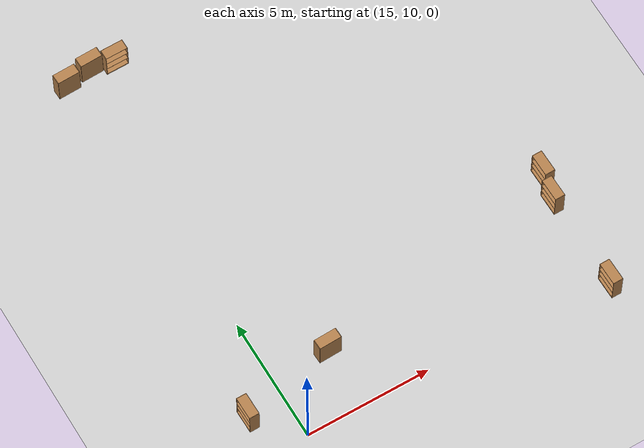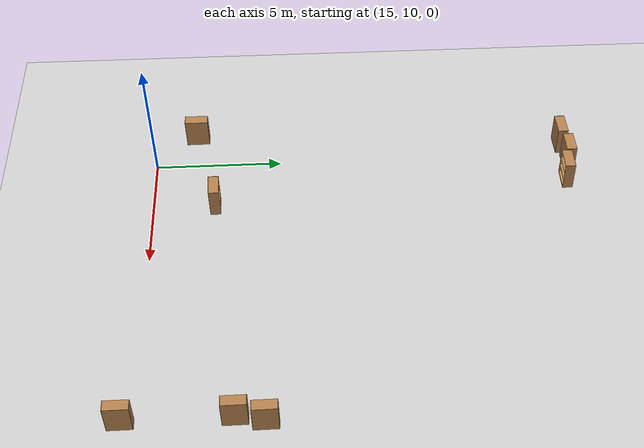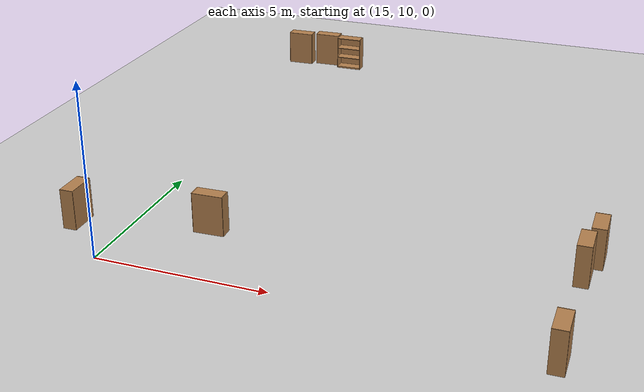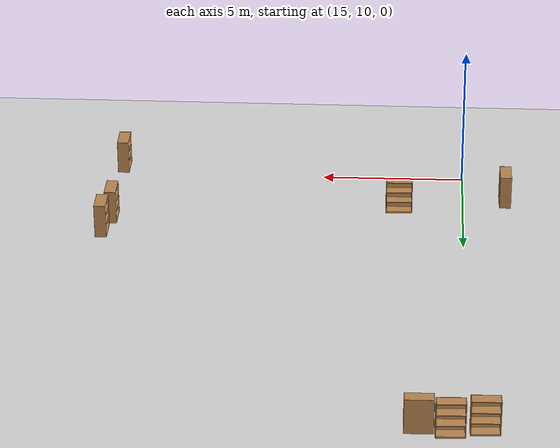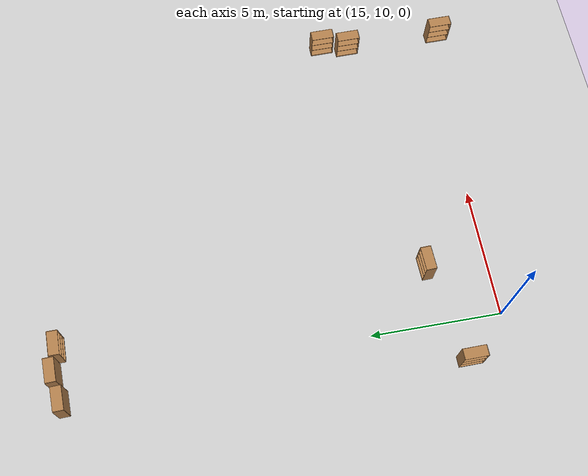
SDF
<sdf version="1.6">
 <world name="default">
  <model name="ground_plane">
   <static>1</static>
   <link name="link">
    <collision name="collision">
     <geometry><plane><normal>0 0 1</normal><size>100 100</size></plane></geometry>
     <surface>
      <contact><collide_bitmask>65535</collide_bitmask></contact>
      <friction><ode><mu>100</mu><mu2>50</mu2></ode></friction>
     </surface>
    </collision>
    <visual name="visual">
     <cast_shadows>0</cast_shadows>
     <geometry><plane><normal>0 0 1</normal><size>100 100</size></plane></geometry>
     <material>
      <script><uri>file://media/materials/scripts/gazebo.material</uri><name>Gazebo/Grey</name></script>
     </material>
    </visual>
   </link>
  </model>
  <model name="bookshelf_clone_2_clone_clone_0_clone_3_clone_clone_1_clone">
   <static>1</static>
   <link name="link">
    <inertial><mass>1</mass></inertial>
    <collision name="back">
     <pose>0 0.005 0.6 0 -0 0</pose>
     <geometry><box><size>0.9 0.01 1.2</size></box></geometry>
    </collision>
    <visual name="visual1">
     <pose>0 0.005 0.6 0 -0 0</pose>
     <geometry><box><size>0.9 0.01 1.2</size></box></geometry>
     <material>
      <script><uri>file://media/materials/scripts/gazebo.material</uri><name>Gazebo/Wood</name></script>
     </material>
    </visual>
    <collision name="left_side">
     <pose>0.45 -0.195 0.6 0 -0 0</pose>
     <geometry><box><size>0.02 0.4 1.2</size></box></geometry>
    </collision>
    <visual name="visual2">
     <pose>0.45 -0.195 0.6 0 -0 0</pose>
     <geometry><box><size>0.02 0.4 1.2</size></box></geometry>
     <material>
      <script><uri>file://media/materials/scripts/gazebo.material</uri><name>Gazebo/Wood</name></script>
     </material>
    </visual>
    <collision name="right_side">
     <pose>-0.45 -0.195 0.6 0 -0 0</pose>
     <geometry><box><size>0.02 0.4 1.2</size></box></geometry>
    </collision>
    <visual name="visual3">
     <pose>-0.45 -0.195 0.6 0 -0 0</pose>
     <geometry><box><size>0.02 0.4 1.2</size></box></geometry>
     <material>
      <script><uri>file://media/materials/scripts/gazebo.material</uri><name>Gazebo/Wood</name></script>
     </material>
    </visual>
    <collision name="bottom">
     <pose>0 -0.195 0.03 0 -0 0</pose>
     <geometry><box><size>0.88 0.4 0.06</size></box></geometry>
    </collision>
    <visual name="visual4">
     <pose>0 -0.195 0.03 0 -0 0</pose>
     <geometry><box><size>0.88 0.4 0.06</size></box></geometry>
     <material>
      <script><uri>file://media/materials/scripts/gazebo.material</uri><name>Gazebo/Wood</name></script>
     </material>
    </visual>
    <collision name="top">
     <pose>0 -0.195 1.19 0 -0 0</pose>
     <geometry><box><size>0.88 0.4 0.02</size></box></geometry>
    </collision>
    <visual name="visual5">
     <pose>0 -0.195 1.19 0 -0 0</pose>
     <geometry><box><size>0.88 0.4 0.02</size></box></geometry>
     <material>
      <script><uri>file://media/materials/scripts/gazebo.material</uri><name>Gazebo/Wood</name></script>
     </material>
    </visual>
    <collision name="low_shelf">
     <pose>0 -0.195 0.43 0 -0 0</pose>
     <geometry><box><size>0.88 0.4 0.02</size></box></geometry>
    </collision>
    <visual name="visual6">
     <pose>0 -0.195 0.43 0 -0 0</pose>
     <geometry><box><size>0.88 0.4 0.02</size></box></geometry>
     <material>
      <script><uri>file://media/materials/scripts/gazebo.material</uri><name>Gazebo/Wood</name></script>
     </material>
    </visual>
    <collision name="high_shelf">
     <pose>0 -0.195 0.8 0 -0 0</pose>
     <geometry><box><size>0.88 0.4 0.02</size></box></geometry>
    </collision>
    <visual name="visual7">
     <pose>0 -0.195 0.8 0 -0 0</pose>
     <geometry><box><size>0.88 0.4 0.02</size></box></geometry>
     <material>
      <script><uri>file://media/materials/scripts/gazebo.material</uri><name>Gazebo/Wood</name></script>
     </material>
    </visual>
   </link>
   <pose>14.4636 26.255 0 0 0 -3.10717</pose>
  </model>
  <model name="bookshelf_clone_2_clone_clone_0_clone_3_clone_clone_1_clone_0">
   <static>1</static>
   <link name="link">
    <inertial><mass>1</mass></inertial>
    <collision name="back">
     <pose>0 0.005 0.6 0 -0 0</pose>
     <geometry><box><size>0.9 0.01 1.2</size></box></geometry>
    </collision>
    <visual name="visual1">
     <pose>0 0.005 0.6 0 -0 0</pose>
     <geometry><box><size>0.9 0.01 1.2</size></box></geometry>
     <material>
      <script><uri>file://media/materials/scripts/gazebo.material</uri><name>Gazebo/Wood</name></script>
     </material>
    </visual>
    <collision name="left_side">
     <pose>0.45 -0.195 0.6 0 -0 0</pose>
     <geometry><box><size>0.02 0.4 1.2</size></box></geometry>
    </collision>
    <visual name="visual2">
     <pose>0.45 -0.195 0.6 0 -0 0</pose>
     <geometry><box><size>0.02 0.4 1.2</size></box></geometry>
     <material>
      <script><uri>file://media/materials/scripts/gazebo.material</uri><name>Gazebo/Wood</name></script>
     </material>
    </visual>
    <collision name="right_side">
     <pose>-0.45 -0.195 0.6 0 -0 0</pose>
     <geometry><box><size>0.02 0.4 1.2</size></box></geometry>
    </collision>
    <visual name="visual3">
     <pose>-0.45 -0.195 0.6 0 -0 0</pose>
     <geometry><box><size>0.02 0.4 1.2</size></box></geometry>
     <material>
      <script><uri>file://media/materials/scripts/gazebo.material</uri><name>Gazebo/Wood</name></script>
     </material>
    </visual>
    <collision name="bottom">
     <pose>0 -0.195 0.03 0 -0 0</pose>
     <geometry><box><size>0.88 0.4 0.06</size></box></geometry>
    </collision>
    <visual name="visual4">
     <pose>0 -0.195 0.03 0 -0 0</pose>
     <geometry><box><size>0.88 0.4 0.06</size></box></geometry>
     <material>
      <script><uri>file://media/materials/scripts/gazebo.material</uri><name>Gazebo/Wood</name></script>
     </material>
    </visual>
    <collision name="top">
     <pose>0 -0.195 1.19 0 -0 0</pose>
     <geometry><box><size>0.88 0.4 0.02</size></box></geometry>
    </collision>
    <visual name="visual5">
     <pose>0 -0.195 1.19 0 -0 0</pose>
     <geometry><box><size>0.88 0.4 0.02</size></box></geometry>
     <material>
      <script><uri>file://media/materials/scripts/gazebo.material</uri><name>Gazebo/Wood</name></script>
     </material>
    </visual>
    <collision name="low_shelf">
     <pose>0 -0.195 0.43 0 -0 0</pose>
     <geometry><box><size>0.88 0.4 0.02</size></box></geometry>
    </collision>
    <visual name="visual6">
     <pose>0 -0.195 0.43 0 -0 0</pose>
     <geometry><box><size>0.88 0.4 0.02</size></box></geometry>
     <material>
      <script><uri>file://media/materials/scripts/gazebo.material</uri><name>Gazebo/Wood</name></script>
     </material>
    </visual>
    <collision name="high_shelf">
     <pose>0 -0.195 0.8 0 -0 0</pose>
     <geometry><box><size>0.88 0.4 0.02</size></box></geometry>
    </collision>
    <visual name="visual7">
     <pose>0 -0.195 0.8 0 -0 0</pose>
     <geometry><box><size>0.88 0.4 0.02</size></box></geometry>
     <material>
      <script><uri>file://media/materials/scripts/gazebo.material</uri><name>Gazebo/Wood</name></script>
     </material>
    </visual>
   </link>
   <pose>15.5124 26.4389 0 0 0 -3.10717</pose>
  </model>
  <model name="bookshelf_clone_2_clone_clone_0_clone_3_clone_clone_1_clone_0_clone">
   <static>1</static>
   <link name="link">
    <inertial><mass>1</mass></inertial>
    <collision name="back">
     <pose>0 0.005 0.6 0 -0 0</pose>
     <geometry><box><size>0.9 0.01 1.2</size></box></geometry>
    </collision>
    <visual name="visual1">
     <pose>0 0.005 0.6 0 -0 0</pose>
     <geometry><box><size>0.9 0.01 1.2</size></box></geometry>
     <material>
      <script><uri>file://media/materials/scripts/gazebo.material</uri><name>Gazebo/Wood</name></script>
     </material>
    </visual>
    <collision name="left_side">
     <pose>0.45 -0.195 0.6 0 -0 0</pose>
     <geometry><box><size>0.02 0.4 1.2</size></box></geometry>
    </collision>
    <visual name="visual2">
     <pose>0.45 -0.195 0.6 0 -0 0</pose>
     <geometry><box><size>0.02 0.4 1.2</size></box></geometry>
     <material>
      <script><uri>file://media/materials/scripts/gazebo.material</uri><name>Gazebo/Wood</name></script>
     </material>
    </visual>
    <collision name="right_side">
     <pose>-0.45 -0.195 0.6 0 -0 0</pose>
     <geometry><box><size>0.02 0.4 1.2</size></box></geometry>
    </collision>
    <visual name="visual3">
     <pose>-0.45 -0.195 0.6 0 -0 0</pose>
     <geometry><box><size>0.02 0.4 1.2</size></box></geometry>
     <material>
      <script><uri>file://media/materials/scripts/gazebo.material</uri><name>Gazebo/Wood</name></script>
     </material>
    </visual>
    <collision name="bottom">
     <pose>0 -0.195 0.03 0 -0 0</pose>
     <geometry><box><size>0.88 0.4 0.06</size></box></geometry>
    </collision>
    <visual name="visual4">
     <pose>0 -0.195 0.03 0 -0 0</pose>
     <geometry><box><size>0.88 0.4 0.06</size></box></geometry>
     <material>
      <script><uri>file://media/materials/scripts/gazebo.material</uri><name>Gazebo/Wood</name></script>
     </material>
    </visual>
    <collision name="top">
     <pose>0 -0.195 1.19 0 -0 0</pose>
     <geometry><box><size>0.88 0.4 0.02</size></box></geometry>
    </collision>
    <visual name="visual5">
     <pose>0 -0.195 1.19 0 -0 0</pose>
     <geometry><box><size>0.88 0.4 0.02</size></box></geometry>
     <material>
      <script><uri>file://media/materials/scripts/gazebo.material</uri><name>Gazebo/Wood</name></script>
     </material>
    </visual>
    <collision name="low_shelf">
     <pose>0 -0.195 0.43 0 -0 0</pose>
     <geometry><box><size>0.88 0.4 0.02</size></box></geometry>
    </collision>
    <visual name="visual6">
     <pose>0 -0.195 0.43 0 -0 0</pose>
     <geometry><box><size>0.88 0.4 0.02</size></box></geometry>
     <material>
      <script><uri>file://media/materials/scripts/gazebo.material</uri><name>Gazebo/Wood</name></script>
     </material>
    </visual>
    <collision name="high_shelf">
     <pose>0 -0.195 0.8 0 -0 0</pose>
     <geometry><box><size>0.88 0.4 0.02</size></box></geometry>
    </collision>
    <visual name="visual7">
     <pose>0 -0.195 0.8 0 -0 0</pose>
     <geometry><box><size>0.88 0.4 0.02</size></box></geometry>
     <material>
      <script><uri>file://media/materials/scripts/gazebo.material</uri><name>Gazebo/Wood</name></script>
     </material>
    </visual>
   </link>
   <pose>16.4569 26.6259 0 0 -0 0.009659</pose>
  </model>
  <model name="bookshelf_clone_2_clone_clone_0_clone_3_clone_0_clone_1_clone_clone_0_clone_1_clone_1_clone_1_clone">
   <static>1</static>
   <link name="link">
    <inertial><mass>1</mass></inertial>
    <collision name="back">
     <pose>0 0.005 0.6 0 -0 0</pose>
     <geometry><box><size>0.9 0.01 1.2</size></box></geometry>
    </collision>
    <visual name="visual1">
     <pose>0 0.005 0.6 0 -0 0</pose>
     <geometry><box><size>0.9 0.01 1.2</size></box></geometry>
     <material>
      <script><uri>file://media/materials/scripts/gazebo.material</uri><name>Gazebo/Wood</name></script>
     </material>
    </visual>
    <collision name="left_side">
     <pose>0.45 -0.195 0.6 0 -0 0</pose>
     <geometry><box><size>0.02 0.4 1.2</size></box></geometry>
    </collision>
    <visual name="visual2">
     <pose>0.45 -0.195 0.6 0 -0 0</pose>
     <geometry><box><size>0.02 0.4 1.2</size></box></geometry>
     <material>
      <script><uri>file://media/materials/scripts/gazebo.material</uri><name>Gazebo/Wood</name></script>
     </material>
    </visual>
    <collision name="right_side">
     <pose>-0.45 -0.195 0.6 0 -0 0</pose>
     <geometry><box><size>0.02 0.4 1.2</size></box></geometry>
    </collision>
    <visual name="visual3">
     <pose>-0.45 -0.195 0.6 0 -0 0</pose>
     <geometry><box><size>0.02 0.4 1.2</size></box></geometry>
     <material>
      <script><uri>file://media/materials/scripts/gazebo.material</uri><name>Gazebo/Wood</name></script>
     </material>
    </visual>
    <collision name="bottom">
     <pose>0 -0.195 0.03 0 -0 0</pose>
     <geometry><box><size>0.88 0.4 0.06</size></box></geometry>
    </collision>
    <visual name="visual4">
     <pose>0 -0.195 0.03 0 -0 0</pose>
     <geometry><box><size>0.88 0.4 0.06</size></box></geometry>
     <material>
      <script><uri>file://media/materials/scripts/gazebo.material</uri><name>Gazebo/Wood</name></script>
     </material>
    </visual>
    <collision name="top">
     <pose>0 -0.195 1.19 0 -0 0</pose>
     <geometry><box><size>0.88 0.4 0.02</size></box></geometry>
    </collision>
    <visual name="visual5">
     <pose>0 -0.195 1.19 0 -0 0</pose>
     <geometry><box><size>0.88 0.4 0.02</size></box></geometry>
     <material>
      <script><uri>file://media/materials/scripts/gazebo.material</uri><name>Gazebo/Wood</name></script>
     </material>
    </visual>
    <collision name="low_shelf">
     <pose>0 -0.195 0.43 0 -0 0</pose>
     <geometry><box><size>0.88 0.4 0.02</size></box></geometry>
    </collision>
    <visual name="visual6">
     <pose>0 -0.195 0.43 0 -0 0</pose>
     <geometry><box><size>0.88 0.4 0.02</size></box></geometry>
     <material>
      <script><uri>file://media/materials/scripts/gazebo.material</uri><name>Gazebo/Wood</name></script>
     </material>
    </visual>
    <collision name="high_shelf">
     <pose>0 -0.195 0.8 0 -0 0</pose>
     <geometry><box><size>0.88 0.4 0.02</size></box></geometry>
    </collision>
    <visual name="visual7">
     <pose>0 -0.195 0.8 0 -0 0</pose>
     <geometry><box><size>0.88 0.4 0.02</size></box></geometry>
     <material>
      <script><uri>file://media/materials/scripts/gazebo.material</uri><name>Gazebo/Wood</name></script>
     </material>
    </visual>
   </link>
   <pose>27.5016 13.4022 0 0 0 -1.56003</pose>
  </model>
  <model name="bookshelf_clone_2_clone_clone_0_clone_3_clone_0_clone_1_clone_clone_0_clone_1_clone_1_clone_1_clone_0">
   <static>1</static>
   <link name="link">
    <inertial><mass>1</mass></inertial>
    <collision name="back">
     <pose>0 0.005 0.6 0 -0 0</pose>
     <geometry><box><size>0.9 0.01 1.2</size></box></geometry>
    </collision>
    <visual name="visual1">
     <pose>0 0.005 0.6 0 -0 0</pose>
     <geometry><box><size>0.9 0.01 1.2</size></box></geometry>
     <material>
      <script><uri>file://media/materials/scripts/gazebo.material</uri><name>Gazebo/Wood</name></script>
     </material>
    </visual>
    <collision name="left_side">
     <pose>0.45 -0.195 0.6 0 -0 0</pose>
     <geometry><box><size>0.02 0.4 1.2</size></box></geometry>
    </collision>
    <visual name="visual2">
     <pose>0.45 -0.195 0.6 0 -0 0</pose>
     <geometry><box><size>0.02 0.4 1.2</size></box></geometry>
     <material>
      <script><uri>file://media/materials/scripts/gazebo.material</uri><name>Gazebo/Wood</name></script>
     </material>
    </visual>
    <collision name="right_side">
     <pose>-0.45 -0.195 0.6 0 -0 0</pose>
     <geometry><box><size>0.02 0.4 1.2</size></box></geometry>
    </collision>
    <visual name="visual3">
     <pose>-0.45 -0.195 0.6 0 -0 0</pose>
     <geometry><box><size>0.02 0.4 1.2</size></box></geometry>
     <material>
      <script><uri>file://media/materials/scripts/gazebo.material</uri><name>Gazebo/Wood</name></script>
     </material>
    </visual>
    <collision name="bottom">
     <pose>0 -0.195 0.03 0 -0 0</pose>
     <geometry><box><size>0.88 0.4 0.06</size></box></geometry>
    </collision>
    <visual name="visual4">
     <pose>0 -0.195 0.03 0 -0 0</pose>
     <geometry><box><size>0.88 0.4 0.06</size></box></geometry>
     <material>
      <script><uri>file://media/materials/scripts/gazebo.material</uri><name>Gazebo/Wood</name></script>
     </material>
    </visual>
    <collision name="top">
     <pose>0 -0.195 1.19 0 -0 0</pose>
     <geometry><box><size>0.88 0.4 0.02</size></box></geometry>
    </collision>
    <visual name="visual5">
     <pose>0 -0.195 1.19 0 -0 0</pose>
     <geometry><box><size>0.88 0.4 0.02</size></box></geometry>
     <material>
      <script><uri>file://media/materials/scripts/gazebo.material</uri><name>Gazebo/Wood</name></script>
     </material>
    </visual>
    <collision name="low_shelf">
     <pose>0 -0.195 0.43 0 -0 0</pose>
     <geometry><box><size>0.88 0.4 0.02</size></box></geometry>
    </collision>
    <visual name="visual6">
     <pose>0 -0.195 0.43 0 -0 0</pose>
     <geometry><box><size>0.88 0.4 0.02</size></box></geometry>
     <material>
      <script><uri>file://media/materials/scripts/gazebo.material</uri><name>Gazebo/Wood</name></script>
     </material>
    </visual>
    <collision name="high_shelf">
     <pose>0 -0.195 0.8 0 -0 0</pose>
     <geometry><box><size>0.88 0.4 0.02</size></box></geometry>
    </collision>
    <visual name="visual7">
     <pose>0 -0.195 0.8 0 -0 0</pose>
     <geometry><box><size>0.88 0.4 0.02</size></box></geometry>
     <material>
      <script><uri>file://media/materials/scripts/gazebo.material</uri><name>Gazebo/Wood</name></script>
     </material>
    </visual>
   </link>
   <pose>27.7282 14.4407 0 0 0 -1.56003</pose>
  </model>
  <model name="bookshelf_clone_2_clone_clone_0_clone_3_clone_clone_1_clone_1">
   <static>1</static>
   <link name="link">
    <inertial><mass>1</mass></inertial>
    <collision name="back">
     <pose>0 0.005 0.6 0 -0 0</pose>
     <geometry><box><size>0.9 0.01 1.2</size></box></geometry>
    </collision>
    <visual name="visual1">
     <pose>0 0.005 0.6 0 -0 0</pose>
     <geometry><box><size>0.9 0.01 1.2</size></box></geometry>
     <material>
      <script><uri>file://media/materials/scripts/gazebo.material</uri><name>Gazebo/Wood</name></script>
     </material>
    </visual>
    <collision name="left_side">
     <pose>0.45 -0.195 0.6 0 -0 0</pose>
     <geometry><box><size>0.02 0.4 1.2</size></box></geometry>
    </collision>
    <visual name="visual2">
     <pose>0.45 -0.195 0.6 0 -0 0</pose>
     <geometry><box><size>0.02 0.4 1.2</size></box></geometry>
     <material>
      <script><uri>file://media/materials/scripts/gazebo.material</uri><name>Gazebo/Wood</name></script>
     </material>
    </visual>
    <collision name="right_side">
     <pose>-0.45 -0.195 0.6 0 -0 0</pose>
     <geometry><box><size>0.02 0.4 1.2</size></box></geometry>
    </collision>
    <visual name="visual3">
     <pose>-0.45 -0.195 0.6 0 -0 0</pose>
     <geometry><box><size>0.02 0.4 1.2</size></box></geometry>
     <material>
      <script><uri>file://media/materials/scripts/gazebo.material</uri><name>Gazebo/Wood</name></script>
     </material>
    </visual>
    <collision name="bottom">
     <pose>0 -0.195 0.03 0 -0 0</pose>
     <geometry><box><size>0.88 0.4 0.06</size></box></geometry>
    </collision>
    <visual name="visual4">
     <pose>0 -0.195 0.03 0 -0 0</pose>
     <geometry><box><size>0.88 0.4 0.06</size></box></geometry>
     <material>
      <script><uri>file://media/materials/scripts/gazebo.material</uri><name>Gazebo/Wood</name></script>
     </material>
    </visual>
    <collision name="top">
     <pose>0 -0.195 1.19 0 -0 0</pose>
     <geometry><box><size>0.88 0.4 0.02</size></box></geometry>
    </collision>
    <visual name="visual5">
     <pose>0 -0.195 1.19 0 -0 0</pose>
     <geometry><box><size>0.88 0.4 0.02</size></box></geometry>
     <material>
      <script><uri>file://media/materials/scripts/gazebo.material</uri><name>Gazebo/Wood</name></script>
     </material>
    </visual>
    <collision name="low_shelf">
     <pose>0 -0.195 0.43 0 -0 0</pose>
     <geometry><box><size>0.88 0.4 0.02</size></box></geometry>
    </collision>
    <visual name="visual6">
     <pose>0 -0.195 0.43 0 -0 0</pose>
     <geometry><box><size>0.88 0.4 0.02</size></box></geometry>
     <material>
      <script><uri>file://media/materials/scripts/gazebo.material</uri><name>Gazebo/Wood</name></script>
     </material>
    </visual>
    <collision name="high_shelf">
     <pose>0 -0.195 0.8 0 -0 0</pose>
     <geometry><box><size>0.88 0.4 0.02</size></box></geometry>
    </collision>
    <visual name="visual7">
     <pose>0 -0.195 0.8 0 -0 0</pose>
     <geometry><box><size>0.88 0.4 0.02</size></box></geometry>
     <material>
      <script><uri>file://media/materials/scripts/gazebo.material</uri><name>Gazebo/Wood</name></script>
     </material>
    </visual>
   </link>
   <pose>17.2595 12.2261 0 0 0 -3.10717</pose>
  </model>
  <model name="bookshelf_clone_2_clone_clone_0_clone_3_clone_0_clone_1_clone_clone_0_clone_1_clone_1_clone_1_clone_clone_0">
   <static>1</static>
   <link name="link">
    <inertial><mass>1</mass></inertial>
    <collision name="back">
     <pose>0 0.005 0.6 0 -0 0</pose>
     <geometry><box><size>0.9 0.01 1.2</size></box></geometry>
    </collision>
    <visual name="visual1">
     <pose>0 0.005 0.6 0 -0 0</pose>
     <geometry><box><size>0.9 0.01 1.2</size></box></geometry>
     <material>
      <script><uri>file://media/materials/scripts/gazebo.material</uri><name>Gazebo/Wood</name></script>
     </material>
    </visual>
    <collision name="left_side">
     <pose>0.45 -0.195 0.6 0 -0 0</pose>
     <geometry><box><size>0.02 0.4 1.2</size></box></geometry>
    </collision>
    <visual name="visual2">
     <pose>0.45 -0.195 0.6 0 -0 0</pose>
     <geometry><box><size>0.02 0.4 1.2</size></box></geometry>
     <material>
      <script><uri>file://media/materials/scripts/gazebo.material</uri><name>Gazebo/Wood</name></script>
     </material>
    </visual>
    <collision name="right_side">
     <pose>-0.45 -0.195 0.6 0 -0 0</pose>
     <geometry><box><size>0.02 0.4 1.2</size></box></geometry>
    </collision>
    <visual name="visual3">
     <pose>-0.45 -0.195 0.6 0 -0 0</pose>
     <geometry><box><size>0.02 0.4 1.2</size></box></geometry>
     <material>
      <script><uri>file://media/materials/scripts/gazebo.material</uri><name>Gazebo/Wood</name></script>
     </material>
    </visual>
    <collision name="bottom">
     <pose>0 -0.195 0.03 0 -0 0</pose>
     <geometry><box><size>0.88 0.4 0.06</size></box></geometry>
    </collision>
    <visual name="visual4">
     <pose>0 -0.195 0.03 0 -0 0</pose>
     <geometry><box><size>0.88 0.4 0.06</size></box></geometry>
     <material>
      <script><uri>file://media/materials/scripts/gazebo.material</uri><name>Gazebo/Wood</name></script>
     </material>
    </visual>
    <collision name="top">
     <pose>0 -0.195 1.19 0 -0 0</pose>
     <geometry><box><size>0.88 0.4 0.02</size></box></geometry>
    </collision>
    <visual name="visual5">
     <pose>0 -0.195 1.19 0 -0 0</pose>
     <geometry><box><size>0.88 0.4 0.02</size></box></geometry>
     <material>
      <script><uri>file://media/materials/scripts/gazebo.material</uri><name>Gazebo/Wood</name></script>
     </material>
    </visual>
    <collision name="low_shelf">
     <pose>0 -0.195 0.43 0 -0 0</pose>
     <geometry><box><size>0.88 0.4 0.02</size></box></geometry>
    </collision>
    <visual name="visual6">
     <pose>0 -0.195 0.43 0 -0 0</pose>
     <geometry><box><size>0.88 0.4 0.02</size></box></geometry>
     <material>
      <script><uri>file://media/materials/scripts/gazebo.material</uri><name>Gazebo/Wood</name></script>
     </material>
    </visual>
    <collision name="high_shelf">
     <pose>0 -0.195 0.8 0 -0 0</pose>
     <geometry><box><size>0.88 0.4 0.02</size></box></geometry>
    </collision>
    <visual name="visual7">
     <pose>0 -0.195 0.8 0 -0 0</pose>
     <geometry><box><size>0.88 0.4 0.02</size></box></geometry>
     <material>
      <script><uri>file://media/materials/scripts/gazebo.material</uri><name>Gazebo/Wood</name></script>
     </material>
    </visual>
   </link>
   <pose>27.5142 9.50756 0 0 0 -1.56003</pose>
  </model>
  <model name="bookshelf_clone_2_clone_clone_0_clone_3_clone_0_clone_1_clone_clone_0_clone_1_clone_1_clone_1_clone_1">
   <static>1</static>
   <link name="link">
    <inertial><mass>1</mass></inertial>
    <collision name="back">
     <pose>0 0.005 0.6 0 -0 0</pose>
     <geometry><box><size>0.9 0.01 1.2</size></box></geometry>
    </collision>
    <visual name="visual1">
     <pose>0 0.005 0.6 0 -0 0</pose>
     <geometry><box><size>0.9 0.01 1.2</size></box></geometry>
     <material>
      <script><uri>file://media/materials/scripts/gazebo.material</uri><name>Gazebo/Wood</name></script>
     </material>
    </visual>
    <collision name="left_side">
     <pose>0.45 -0.195 0.6 0 -0 0</pose>
     <geometry><box><size>0.02 0.4 1.2</size></box></geometry>
    </collision>
    <visual name="visual2">
     <pose>0.45 -0.195 0.6 0 -0 0</pose>
     <geometry><box><size>0.02 0.4 1.2</size></box></geometry>
     <material>
      <script><uri>file://media/materials/scripts/gazebo.material</uri><name>Gazebo/Wood</name></script>
     </material>
    </visual>
    <collision name="right_side">
     <pose>-0.45 -0.195 0.6 0 -0 0</pose>
     <geometry><box><size>0.02 0.4 1.2</size></box></geometry>
    </collision>
    <visual name="visual3">
     <pose>-0.45 -0.195 0.6 0 -0 0</pose>
     <geometry><box><size>0.02 0.4 1.2</size></box></geometry>
     <material>
      <script><uri>file://media/materials/scripts/gazebo.material</uri><name>Gazebo/Wood</name></script>
     </material>
    </visual>
    <collision name="bottom">
     <pose>0 -0.195 0.03 0 -0 0</pose>
     <geometry><box><size>0.88 0.4 0.06</size></box></geometry>
    </collision>
    <visual name="visual4">
     <pose>0 -0.195 0.03 0 -0 0</pose>
     <geometry><box><size>0.88 0.4 0.06</size></box></geometry>
     <material>
      <script><uri>file://media/materials/scripts/gazebo.material</uri><name>Gazebo/Wood</name></script>
     </material>
    </visual>
    <collision name="top">
     <pose>0 -0.195 1.19 0 -0 0</pose>
     <geometry><box><size>0.88 0.4 0.02</size></box></geometry>
    </collision>
    <visual name="visual5">
     <pose>0 -0.195 1.19 0 -0 0</pose>
     <geometry><box><size>0.88 0.4 0.02</size></box></geometry>
     <material>
      <script><uri>file://media/materials/scripts/gazebo.material</uri><name>Gazebo/Wood</name></script>
     </material>
    </visual>
    <collision name="low_shelf">
     <pose>0 -0.195 0.43 0 -0 0</pose>
     <geometry><box><size>0.88 0.4 0.02</size></box></geometry>
    </collision>
    <visual name="visual6">
     <pose>0 -0.195 0.43 0 -0 0</pose>
     <geometry><box><size>0.88 0.4 0.02</size></box></geometry>
     <material>
      <script><uri>file://media/materials/scripts/gazebo.material</uri><name>Gazebo/Wood</name></script>
     </material>
    </visual>
    <collision name="high_shelf">
     <pose>0 -0.195 0.8 0 -0 0</pose>
     <geometry><box><size>0.88 0.4 0.02</size></box></geometry>
    </collision>
    <visual name="visual7">
     <pose>0 -0.195 0.8 0 -0 0</pose>
     <geometry><box><size>0.88 0.4 0.02</size></box></geometry>
     <material>
      <script><uri>file://media/materials/scripts/gazebo.material</uri><name>Gazebo/Wood</name></script>
     </material>
    </visual>
   </link>
   <pose>13.6943 11.6138 0 0 0 -1.56003</pose>
  </model>
 </world>
</sdf>
